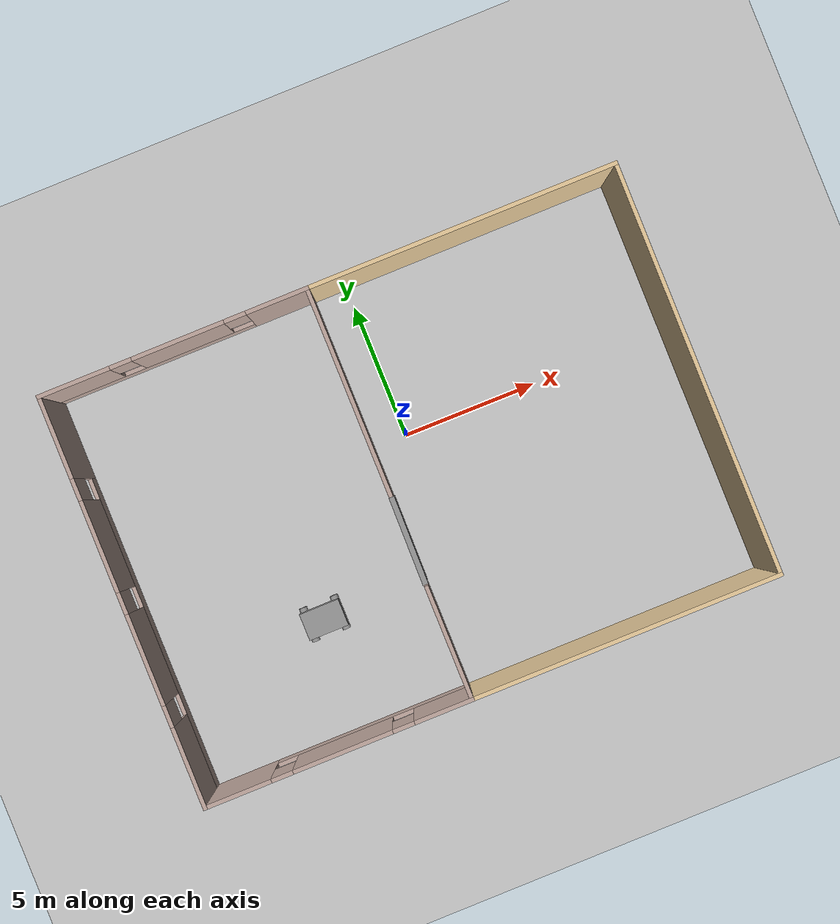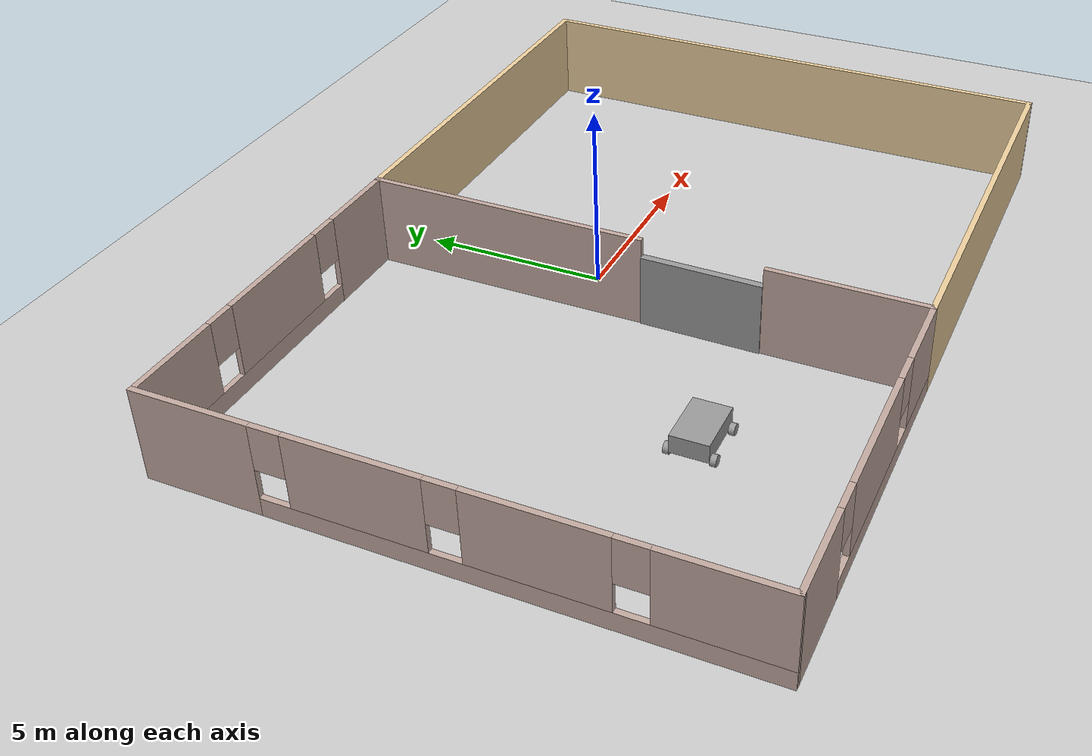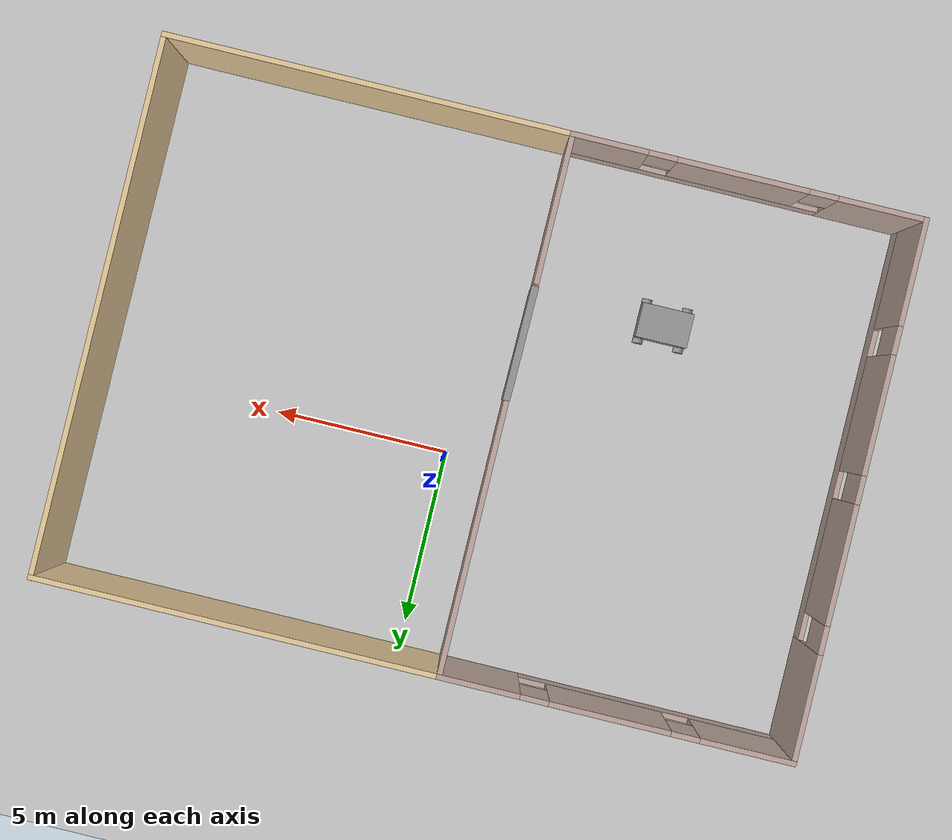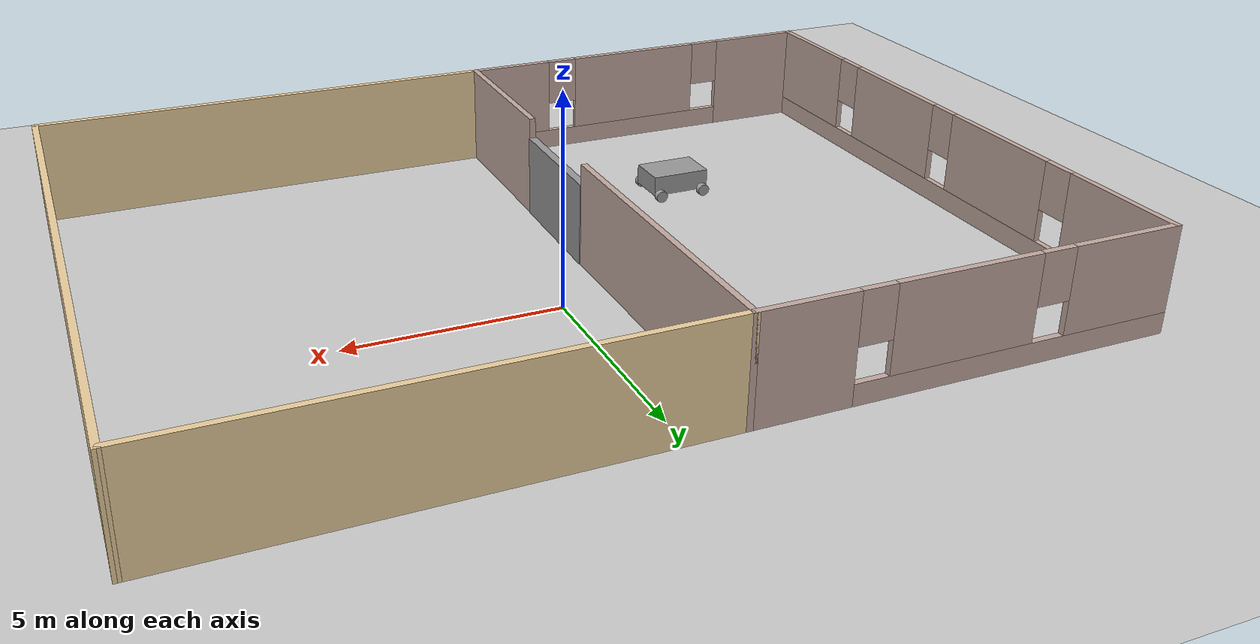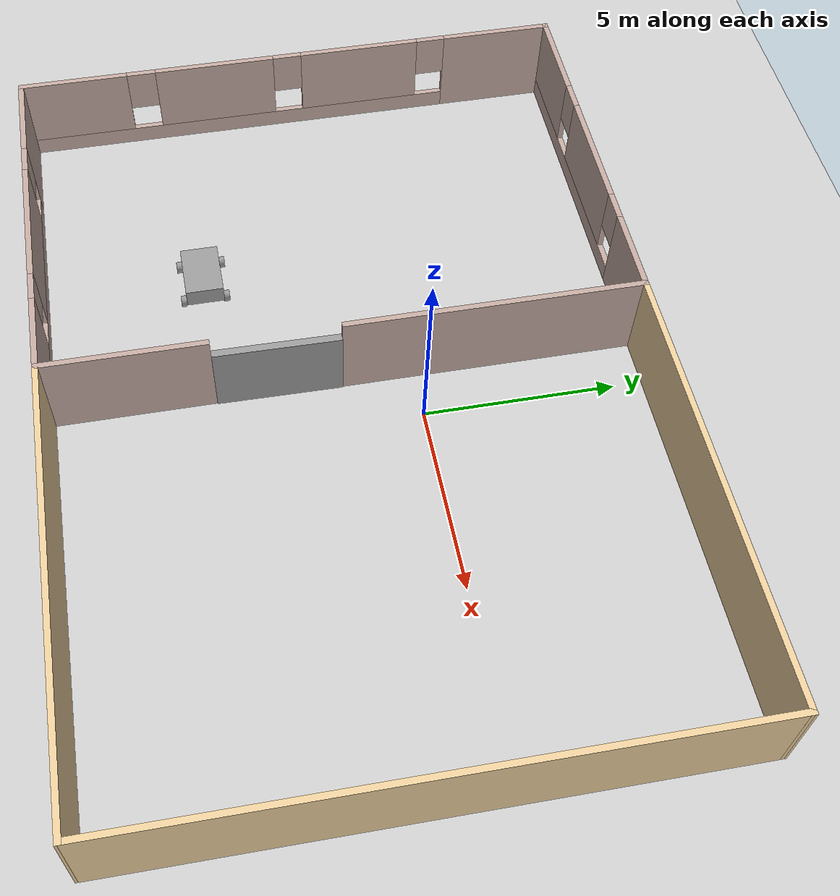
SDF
<sdf version="1.7">
 <world name="default">
  <model name="ground_plane">
   <static>1</static>
   <link name="link_ground_plane">
    <collision name="collision">
     <geometry><plane><normal>0 0 1</normal><size>100 100</size></plane></geometry>
     <surface>
      <contact><collide_bitmask>65535</collide_bitmask></contact>
      <friction><ode><mu>100</mu><mu2>50</mu2></ode></friction>
     </surface>
    </collision>
    <visual name="visual">
     <cast_shadows>0</cast_shadows>
     <geometry><plane><normal>0 0 1</normal><size>100 100</size></plane></geometry>
     <material>
      <script><uri>file://media/materials/scripts/gazebo.material</uri><name>Gazebo/Grey</name></script>
     </material>
    </visual>
   </link>
  </model>
  <model name="mybuilding">
   <pose>-0.545801 -1.74578 0 0 -0 0</pose>
   <link name="Door_4">
    <collision name="Door_4_Collision">
     <geometry><box><size>3.24984 0.2 2</size></box></geometry>
     <pose>0 0 1 0 -0 0</pose>
    </collision>
    <visual name="Door_4_Visual">
     <pose>0 0 1 0 -0 0</pose>
     <geometry><box><size>3.24984 0.2 2</size></box></geometry>
     <material>
      <script><uri>file://media/materials/scripts/gazebo.material</uri><name>Gazebo/Grey</name></script>
     </material>
    </visual>
    <pose>-0.770749 -1.74362 0 0 -0 -1.58189</pose>
   </link>
   <link name="Wall_10">
    <pose>-5.67505 7.54995 0 0 -0 3.14159</pose>
    <visual name="Wall_10_Visual_0">
     <pose>-3.83933 0 1.25 0 -0 0</pose>
     <geometry><box><size>2.32133 0.15 2.5</size></box></geometry>
     <material>
      <script><uri>file://media/materials/scripts/gazebo.material</uri><name>Gazebo/Grey</name></script>
      <ambient>0.760784 0.662745 0.627451 1</ambient>
     </material>
     <meta><layer>0</layer></meta>
    </visual>
    <collision name="Wall_10_Collision_0">
     <geometry><box><size>2.32133 0.15 2.5</size></box></geometry>
     <pose>-3.83933 0 1.25 0 -0 0</pose>
    </collision>
    <visual name="Wall_10_Visual_1">
     <pose>1.16067 0 0.25 0 -0 0</pose>
     <geometry><box><size>7.67867 0.15 0.5</size></box></geometry>
     <material>
      <script><uri>file://media/materials/scripts/gazebo.material</uri><name>Gazebo/Grey</name></script>
      <ambient>0.760784 0.662745 0.627451 1</ambient>
     </material>
     <meta><layer>0</layer></meta>
    </visual>
    <collision name="Wall_10_Collision_1">
     <geometry><box><size>7.67867 0.15 0.5</size></box></geometry>
     <pose>1.16067 0 0.25 0 -0 0</pose>
    </collision>
    <visual name="Wall_10_Visual_2">
     <pose>-0.179835 0 1.5 0 -0 0</pose>
     <geometry><box><size>3.39766 0.15 2</size></box></geometry>
     <material>
      <script><uri>file://media/materials/scripts/gazebo.material</uri><name>Gazebo/Grey</name></script>
      <ambient>0.760784 0.662745 0.627451 1</ambient>
     </material>
     <meta><layer>0</layer></meta>
    </visual>
    <collision name="Wall_10_Collision_2">
     <geometry><box><size>3.39766 0.15 2</size></box></geometry>
     <pose>-0.179835 0 1.5 0 -0 0</pose>
    </collision>
    <visual name="Wall_10_Visual_3">
     <pose>3.6595 0 1.5 0 -0 0</pose>
     <geometry><box><size>2.681 0.15 2</size></box></geometry>
     <material>
      <script><uri>file://media/materials/scripts/gazebo.material</uri><name>Gazebo/Grey</name></script>
      <ambient>0.760784 0.662745 0.627451 1</ambient>
     </material>
     <meta><layer>0</layer></meta>
    </visual>
    <collision name="Wall_10_Collision_3">
     <geometry><box><size>2.681 0.15 2</size></box></geometry>
     <pose>3.6595 0 1.5 0 -0 0</pose>
    </collision>
    <visual name="Wall_10_Visual_4">
     <pose>-2.27867 0 1.9 0 -0 0</pose>
     <geometry><box><size>0.8 0.15 1.2</size></box></geometry>
     <material>
      <script><uri>file://media/materials/scripts/gazebo.material</uri><name>Gazebo/Grey</name></script>
      <ambient>0.760784 0.662745 0.627451 1</ambient>
     </material>
     <meta><layer>0</layer></meta>
    </visual>
    <collision name="Wall_10_Collision_4">
     <geometry><box><size>0.8 0.15 1.2</size></box></geometry>
     <pose>-2.27867 0 1.9 0 -0 0</pose>
    </collision>
    <visual name="Wall_10_Visual_5">
     <pose>1.919 0 1.9 0 -0 0</pose>
     <geometry><box><size>0.8 0.15 1.2</size></box></geometry>
     <material>
      <script><uri>file://media/materials/scripts/gazebo.material</uri><name>Gazebo/Grey</name></script>
      <ambient>0.760784 0.662745 0.627451 1</ambient>
     </material>
     <meta><layer>0</layer></meta>
    </visual>
    <collision name="Wall_10_Collision_5">
     <geometry><box><size>0.8 0.15 1.2</size></box></geometry>
     <pose>1.919 0 1.9 0 -0 0</pose>
    </collision>
   </link>
   <link name="Wall_11">
    <pose>-10.6001 -5.3e-05 0 0 -0 -1.5708</pose>
    <visual name="Wall_11_Visual_0">
     <pose>-6.07843 0 1.25 0 -0 0</pose>
     <geometry><box><size>3.09313 0.15 2.5</size></box></geometry>
     <material>
      <script><uri>file://media/materials/scripts/gazebo.material</uri><name>Gazebo/Grey</name></script>
      <ambient>0.760784 0.662745 0.627451 1</ambient>
     </material>
     <meta><layer>0</layer></meta>
    </visual>
    <collision name="Wall_11_Collision_0">
     <geometry><box><size>3.09313 0.15 2.5</size></box></geometry>
     <pose>-6.07843 0 1.25 0 -0 0</pose>
    </collision>
    <visual name="Wall_11_Visual_1">
     <pose>1.54657 0 0.25 0 -0 0</pose>
     <geometry><box><size>12.1569 0.15 0.5</size></box></geometry>
     <material>
      <script><uri>file://media/materials/scripts/gazebo.material</uri><name>Gazebo/Grey</name></script>
      <ambient>0.760784 0.662745 0.627451 1</ambient>
     </material>
     <meta><layer>0</layer></meta>
    </visual>
    <collision name="Wall_11_Collision_1">
     <geometry><box><size>12.1569 0.15 0.5</size></box></geometry>
     <pose>1.54657 0 0.25 0 -0 0</pose>
    </collision>
    <visual name="Wall_11_Visual_2">
     <pose>-2.04327 0 1.5 0 -0 0</pose>
     <geometry><box><size>3.37719 0.15 2</size></box></geometry>
     <material>
      <script><uri>file://media/materials/scripts/gazebo.material</uri><name>Gazebo/Grey</name></script>
      <ambient>0.760784 0.662745 0.627451 1</ambient>
     </material>
     <meta><layer>0</layer></meta>
    </visual>
    <collision name="Wall_11_Collision_2">
     <geometry><box><size>3.37719 0.15 2</size></box></geometry>
     <pose>-2.04327 0 1.5 0 -0 0</pose>
    </collision>
    <visual name="Wall_11_Visual_3">
     <pose>2.12367 0 1.5 0 -0 0</pose>
     <geometry><box><size>3.35671 0.15 2</size></box></geometry>
     <material>
      <script><uri>file://media/materials/scripts/gazebo.material</uri><name>Gazebo/Grey</name></script>
      <ambient>0.760784 0.662745 0.627451 1</ambient>
     </material>
     <meta><layer>0</layer></meta>
    </visual>
    <collision name="Wall_11_Collision_3">
     <geometry><box><size>3.35671 0.15 2</size></box></geometry>
     <pose>2.12367 0 1.5 0 -0 0</pose>
    </collision>
    <visual name="Wall_11_Visual_4">
     <pose>6.11351 0 1.5 0 -0 0</pose>
     <geometry><box><size>3.02297 0.15 2</size></box></geometry>
     <material>
      <script><uri>file://media/materials/scripts/gazebo.material</uri><name>Gazebo/Grey</name></script>
      <ambient>0.760784 0.662745 0.627451 1</ambient>
     </material>
     <meta><layer>0</layer></meta>
    </visual>
    <collision name="Wall_11_Collision_4">
     <geometry><box><size>3.02297 0.15 2</size></box></geometry>
     <pose>6.11351 0 1.5 0 -0 0</pose>
    </collision>
    <visual name="Wall_11_Visual_5">
     <pose>-4.13187 0 1.9 0 -0 0</pose>
     <geometry><box><size>0.8 0.15 1.2</size></box></geometry>
     <material>
      <script><uri>file://media/materials/scripts/gazebo.material</uri><name>Gazebo/Grey</name></script>
      <ambient>0.760784 0.662745 0.627451 1</ambient>
     </material>
     <meta><layer>0</layer></meta>
    </visual>
    <collision name="Wall_11_Collision_5">
     <geometry><box><size>0.8 0.15 1.2</size></box></geometry>
     <pose>-4.13187 0 1.9 0 -0 0</pose>
    </collision>
    <visual name="Wall_11_Visual_6">
     <pose>0.04532 0 1.9 0 -0 0</pose>
     <geometry><box><size>0.8 0.15 1.2</size></box></geometry>
     <material>
      <script><uri>file://media/materials/scripts/gazebo.material</uri><name>Gazebo/Grey</name></script>
      <ambient>0.760784 0.662745 0.627451 1</ambient>
     </material>
     <meta><layer>0</layer></meta>
    </visual>
    <collision name="Wall_11_Collision_6">
     <geometry><box><size>0.8 0.15 1.2</size></box></geometry>
     <pose>0.04532 0 1.9 0 -0 0</pose>
    </collision>
    <visual name="Wall_11_Visual_7">
     <pose>4.20203 0 1.9 0 -0 0</pose>
     <geometry><box><size>0.8 0.15 1.2</size></box></geometry>
     <material>
      <script><uri>file://media/materials/scripts/gazebo.material</uri><name>Gazebo/Grey</name></script>
      <ambient>0.760784 0.662745 0.627451 1</ambient>
     </material>
     <meta><layer>0</layer></meta>
    </visual>
    <collision name="Wall_11_Collision_7">
     <geometry><box><size>0.8 0.15 1.2</size></box></geometry>
     <pose>4.20203 0 1.9 0 -0 0</pose>
    </collision>
   </link>
   <link name="Wall_13">
    <pose>-5.6911 -7.54664 0 0 -0 0.000695</pose>
    <visual name="Wall_13_Visual_0">
     <pose>-3.72543 0 1.25 0 -0 0</pose>
     <geometry><box><size>2.51706 0.15 2.5</size></box></geometry>
     <material>
      <script><uri>file://media/materials/scripts/gazebo.material</uri><name>Gazebo/Grey</name></script>
      <ambient>0.760784 0.662745 0.627451 1</ambient>
     </material>
     <meta><layer>0</layer></meta>
    </visual>
    <collision name="Wall_13_Collision_0">
     <geometry><box><size>2.51706 0.15 2.5</size></box></geometry>
     <pose>-3.72543 0 1.25 0 -0 0</pose>
    </collision>
    <visual name="Wall_13_Visual_1">
     <pose>1.25853 0 0.25 0 -0 0</pose>
     <geometry><box><size>7.45085 0.15 0.5</size></box></geometry>
     <material>
      <script><uri>file://media/materials/scripts/gazebo.material</uri><name>Gazebo/Grey</name></script>
      <ambient>0.760784 0.662745 0.627451 1</ambient>
     </material>
     <meta><layer>0</layer></meta>
    </visual>
    <collision name="Wall_13_Collision_1">
     <geometry><box><size>7.45085 0.15 0.5</size></box></geometry>
     <pose>1.25853 0 0.25 0 -0 0</pose>
    </collision>
    <visual name="Wall_13_Visual_2">
     <pose>0.1651 0 1.5 0 -0 0</pose>
     <geometry><box><size>3.664 0.15 2</size></box></geometry>
     <material>
      <script><uri>file://media/materials/scripts/gazebo.material</uri><name>Gazebo/Grey</name></script>
      <ambient>0.760784 0.662745 0.627451 1</ambient>
     </material>
     <meta><layer>0</layer></meta>
    </visual>
    <collision name="Wall_13_Collision_2">
     <geometry><box><size>3.664 0.15 2</size></box></geometry>
     <pose>0.1651 0 1.5 0 -0 0</pose>
    </collision>
    <visual name="Wall_13_Visual_3">
     <pose>3.89053 0 1.5 0 -0 0</pose>
     <geometry><box><size>2.18685 0.15 2</size></box></geometry>
     <material>
      <script><uri>file://media/materials/scripts/gazebo.material</uri><name>Gazebo/Grey</name></script>
      <ambient>0.760784 0.662745 0.627451 1</ambient>
     </material>
     <meta><layer>0</layer></meta>
    </visual>
    <collision name="Wall_13_Collision_3">
     <geometry><box><size>2.18685 0.15 2</size></box></geometry>
     <pose>3.89053 0 1.5 0 -0 0</pose>
    </collision>
    <visual name="Wall_13_Visual_4">
     <pose>-2.0669 0 1.9 0 -0 0</pose>
     <geometry><box><size>0.8 0.15 1.2</size></box></geometry>
     <material>
      <script><uri>file://media/materials/scripts/gazebo.material</uri><name>Gazebo/Grey</name></script>
      <ambient>0.760784 0.662745 0.627451 1</ambient>
     </material>
     <meta><layer>0</layer></meta>
    </visual>
    <collision name="Wall_13_Collision_4">
     <geometry><box><size>0.8 0.15 1.2</size></box></geometry>
     <pose>-2.0669 0 1.9 0 -0 0</pose>
    </collision>
    <visual name="Wall_13_Visual_5">
     <pose>2.3971 0 1.9 0 -0 0</pose>
     <geometry><box><size>0.8 0.15 1.2</size></box></geometry>
     <material>
      <script><uri>file://media/materials/scripts/gazebo.material</uri><name>Gazebo/Grey</name></script>
      <ambient>0.760784 0.662745 0.627451 1</ambient>
     </material>
     <meta><layer>0</layer></meta>
    </visual>
    <collision name="Wall_13_Collision_5">
     <geometry><box><size>0.8 0.15 1.2</size></box></geometry>
     <pose>2.3971 0 1.9 0 -0 0</pose>
    </collision>
   </link>
   <link name="Wall_15">
    <collision name="Wall_15_Collision">
     <geometry><box><size>11.5 0.15 2.5</size></box></geometry>
     <pose>0 0 1.25 0 -0 0</pose>
    </collision>
    <visual name="Wall_15_Visual">
     <pose>0 0 1.25 0 -0 0</pose>
     <geometry><box><size>11.5 0.15 2.5</size></box></geometry>
     <material>
      <script><uri>file://media/materials/scripts/gazebo.material</uri><name>Gazebo/Grey</name></script>
      <ambient>0.921569 0.807843 0.615686 1</ambient>
     </material>
     <meta><layer>0</layer></meta>
    </visual>
    <pose>4.89285 -7.54323 0 0 -0 0</pose>
   </link>
   <link name="Wall_18">
    <collision name="Wall_18_Collision">
     <geometry><box><size>11.5 0.15 2.5</size></box></geometry>
     <pose>0 0 1.25 0 -0 0</pose>
    </collision>
    <visual name="Wall_18_Visual">
     <pose>0 0 1.25 0 -0 0</pose>
     <geometry><box><size>11.5 0.15 2.5</size></box></geometry>
     <material>
      <script><uri>file://media/materials/scripts/gazebo.material</uri><name>Gazebo/Grey</name></script>
      <ambient>0.921569 0.807843 0.615686 1</ambient>
     </material>
     <meta><layer>0</layer></meta>
    </visual>
    <pose>4.92495 7.54995 0 0 -0 0</pose>
   </link>
   <link name="Wall_20">
    <collision name="Wall_20_Collision">
     <geometry><box><size>15.2432 0.15 2.5</size></box></geometry>
     <pose>0 0 1.25 0 -0 0</pose>
    </collision>
    <visual name="Wall_20_Visual">
     <pose>0 0 1.25 0 -0 0</pose>
     <geometry><box><size>15.2432 0.15 2.5</size></box></geometry>
     <material>
      <script><uri>file://media/materials/scripts/gazebo.material</uri><name>Gazebo/Grey</name></script>
      <ambient>0.921569 0.807843 0.615686 1</ambient>
     </material>
     <meta><layer>0</layer></meta>
    </visual>
    <pose>10.5839 0.003357 0 0 -0 -1.57292</pose>
   </link>
   <link name="Wall_7">
    <collision name="Wall_7_Collision">
     <geometry><box><size>4.25 0.15 2.5</size></box></geometry>
     <pose>0 0 1.25 0 -0 0</pose>
    </collision>
    <visual name="Wall_7_Visual">
     <pose>0 0 1.25 0 -0 0</pose>
     <geometry><box><size>4.25 0.15 2.5</size></box></geometry>
     <material>
      <script><uri>file://media/materials/scripts/gazebo.material</uri><name>Gazebo/Grey</name></script>
      <ambient>0.760784 0.662745 0.627451 1</ambient>
     </material>
     <meta><layer>0</layer></meta>
    </visual>
    <pose>-0.782147 -5.49323 0 0 -0 1.5708</pose>
   </link>
   <link name="Wall_9">
    <collision name="Wall_9_Collision">
     <geometry><box><size>7.75 0.15 2.5</size></box></geometry>
     <pose>0 0 1.25 0 -0 0</pose>
    </collision>
    <visual name="Wall_9_Visual">
     <pose>0 0 1.25 0 -0 0</pose>
     <geometry><box><size>7.75 0.15 2.5</size></box></geometry>
     <material>
      <script><uri>file://media/materials/scripts/gazebo.material</uri><name>Gazebo/Grey</name></script>
      <ambient>0.760784 0.662745 0.627451 1</ambient>
     </material>
     <meta><layer>0</layer></meta>
    </visual>
    <pose>-0.750053 3.74995 0 0 -0 1.5708</pose>
   </link>
   <static>1</static>
  </model>
  <model name="myrobot_0">
   <link name="link_0">
    <inertial>
     <mass>1</mass>
     <inertia>
      <ixx>0.166667</ixx>
      <ixy>0</ixy>
      <ixz>0</ixz>
      <iyy>0.166667</iyy>
      <iyz>0</iyz>
      <izz>0.166667</izz>
     </inertia>
    </inertial>
    <visual name="visual">
     <geometry><box><size>1.5 1 0.5</size></box></geometry>
     <material>
      <lighting>1</lighting>
      <script><uri>file://media/materials/scripts/gazebo.material</uri><name>Gazebo/Grey</name></script>
      <shader type="pixel"><normal_map>__default__</normal_map></shader>
      <ambient>0.3 0.3 0.3 1</ambient>
      <diffuse>0.7 0.7 0.7 1</diffuse>
      <specular>0.01 0.01 0.01 1</specular>
      <emissive>0 0 0 1</emissive>
     </material>
    </visual>
    <collision name="collision">
     <geometry><box><size>1.5 1 0.5</size></box></geometry>
     <surface>
      <friction>
       <ode><mu>1</mu><mu2>1</mu2><fdir1>0 0 0</fdir1><slip1>0</slip1><slip2>0</slip2></ode>
       <torsional>
        <coefficient>1</coefficient>
        <patch_radius>0</patch_radius>
        <surface_radius>0</surface_radius>
        <use_patch_radius>1</use_patch_radius>
        <ode><slip>0</slip></ode>
       </torsional>
      </friction>
      <bounce><restitution_coefficient>0</restitution_coefficient><threshold>1e+06</threshold></bounce>
      <contact>
       <collide_without_contact>0</collide_without_contact>
       <collide_without_contact_bitmask>1</collide_without_contact_bitmask>
       <collide_bitmask>1</collide_bitmask>
       <ode>
        <soft_cfm>0</soft_cfm>
        <soft_erp>0.2</soft_erp>
        <kp>1e+13</kp>
        <kd>1</kd>
        <max_vel>0.01</max_vel>
        <min_depth>0</min_depth>
       </ode>
       <bullet>
        <split_impulse>1</split_impulse>
        <split_impulse_penetration_threshold>-0.01</split_impulse_penetration_threshold>
        <soft_cfm>0</soft_cfm>
        <soft_erp>0.2</soft_erp>
        <kp>1e+13</kp>
        <kd>1</kd>
       </bullet>
      </contact>
     </surface>
    </collision>
   </link>
   <link name="link_1">
    <inertial>
     <mass>1</mass>
     <inertia><ixx>0.145833</ixx><ixy>0</ixy><ixz>0</ixz><iyy>0.145833</iyy><iyz>0</iyz><izz>0.125</izz></inertia>
    </inertial>
    <pose>0.6 -0.575119 -0.25 1.57 -0 0</pose>
    <visual name="visual">
     <geometry><cylinder><radius>0.15</radius><length>0.15</length></cylinder></geometry>
     <material>
      <lighting>1</lighting>
      <script><uri>file://media/materials/scripts/gazebo.material</uri><name>Gazebo/Grey</name></script>
      <shader type="pixel"><normal_map>__default__</normal_map></shader>
      <ambient>0.3 0.3 0.3 1</ambient>
      <diffuse>0.7 0.7 0.7 1</diffuse>
      <specular>0.01 0.01 0.01 1</specular>
      <emissive>0 0 0 1</emissive>
     </material>
    </visual>
    <collision name="collision">
     <geometry><cylinder><radius>0.15</radius><length>0.15</length></cylinder></geometry>
     <surface>
      <friction>
       <ode><mu>1</mu><mu2>1</mu2><fdir1>0 0 0</fdir1><slip1>0</slip1><slip2>0</slip2></ode>
       <torsional>
        <coefficient>1</coefficient>
        <patch_radius>0</patch_radius>
        <surface_radius>0</surface_radius>
        <use_patch_radius>1</use_patch_radius>
        <ode><slip>0</slip></ode>
       </torsional>
      </friction>
      <bounce><restitution_coefficient>0</restitution_coefficient><threshold>1e+06</threshold></bounce>
      <contact>
       <collide_without_contact>0</collide_without_contact>
       <collide_without_contact_bitmask>1</collide_without_contact_bitmask>
       <collide_bitmask>1</collide_bitmask>
       <ode>
        <soft_cfm>0</soft_cfm>
        <soft_erp>0.2</soft_erp>
        <kp>1e+13</kp>
        <kd>1</kd>
        <max_vel>0.01</max_vel>
        <min_depth>0</min_depth>
       </ode>
       <bullet>
        <split_impulse>1</split_impulse>
        <split_impulse_penetration_threshold>-0.01</split_impulse_penetration_threshold>
        <soft_cfm>0</soft_cfm>
        <soft_erp>0.2</soft_erp>
        <kp>1e+13</kp>
        <kd>1</kd>
       </bullet>
      </contact>
     </surface>
    </collision>
   </link>
   <link name="link_1_clone">
    <inertial>
     <mass>1</mass>
     <inertia><ixx>0.145833</ixx><ixy>0</ixy><ixz>0</ixz><iyy>0.145833</iyy><iyz>0</iyz><izz>0.125</izz></inertia>
    </inertial>
    <pose>-0.6 -0.575119 -0.25 1.57 -0 0</pose>
    <visual name="visual">
     <geometry><cylinder><radius>0.15</radius><length>0.15</length></cylinder></geometry>
     <material>
      <lighting>1</lighting>
      <script><uri>file://media/materials/scripts/gazebo.material</uri><name>Gazebo/Grey</name></script>
      <shader type="pixel"><normal_map>__default__</normal_map></shader>
      <ambient>0.3 0.3 0.3 1</ambient>
      <diffuse>0.7 0.7 0.7 1</diffuse>
      <specular>0.01 0.01 0.01 1</specular>
      <emissive>0 0 0 1</emissive>
     </material>
    </visual>
    <collision name="collision">
     <geometry><cylinder><radius>0.15</radius><length>0.15</length></cylinder></geometry>
     <surface>
      <friction>
       <ode><mu>1</mu><mu2>1</mu2><fdir1>0 0 0</fdir1><slip1>0</slip1><slip2>0</slip2></ode>
       <torsional>
        <coefficient>1</coefficient>
        <patch_radius>0</patch_radius>
        <surface_radius>0</surface_radius>
        <use_patch_radius>1</use_patch_radius>
        <ode><slip>0</slip></ode>
       </torsional>
      </friction>
      <bounce><restitution_coefficient>0</restitution_coefficient><threshold>1e+06</threshold></bounce>
      <contact>
       <collide_without_contact>0</collide_without_contact>
       <collide_without_contact_bitmask>1</collide_without_contact_bitmask>
       <collide_bitmask>1</collide_bitmask>
       <ode>
        <soft_cfm>0</soft_cfm>
        <soft_erp>0.2</soft_erp>
        <kp>1e+13</kp>
        <kd>1</kd>
        <max_vel>0.01</max_vel>
        <min_depth>0</min_depth>
       </ode>
       <bullet>
        <split_impulse>1</split_impulse>
        <split_impulse_penetration_threshold>-0.01</split_impulse_penetration_threshold>
        <soft_cfm>0</soft_cfm>
        <soft_erp>0.2</soft_erp>
        <kp>1e+13</kp>
        <kd>1</kd>
       </bullet>
      </contact>
     </surface>
    </collision>
   </link>
   <link name="link_1_clone_0">
    <inertial>
     <mass>1</mass>
     <inertia><ixx>0.145833</ixx><ixy>0</ixy><ixz>0</ixz><iyy>0.145833</iyy><iyz>0</iyz><izz>0.125</izz></inertia>
    </inertial>
    <pose>-0.6 0.575119 -0.25 1.57 -0 0</pose>
    <visual name="visual">
     <geometry><cylinder><radius>0.15</radius><length>0.15</length></cylinder></geometry>
     <material>
      <lighting>1</lighting>
      <script><uri>file://media/materials/scripts/gazebo.material</uri><name>Gazebo/Grey</name></script>
      <shader type="pixel"><normal_map>__default__</normal_map></shader>
      <ambient>0.3 0.3 0.3 1</ambient>
      <diffuse>0.7 0.7 0.7 1</diffuse>
      <specular>0.01 0.01 0.01 1</specular>
      <emissive>0 0 0 1</emissive>
     </material>
    </visual>
    <collision name="collision">
     <geometry><cylinder><radius>0.15</radius><length>0.15</length></cylinder></geometry>
     <surface>
      <friction>
       <ode><mu>1</mu><mu2>1</mu2><fdir1>0 0 0</fdir1><slip1>0</slip1><slip2>0</slip2></ode>
       <torsional>
        <coefficient>1</coefficient>
        <patch_radius>0</patch_radius>
        <surface_radius>0</surface_radius>
        <use_patch_radius>1</use_patch_radius>
        <ode><slip>0</slip></ode>
       </torsional>
      </friction>
      <bounce><restitution_coefficient>0</restitution_coefficient><threshold>1e+06</threshold></bounce>
      <contact>
       <collide_without_contact>0</collide_without_contact>
       <collide_without_contact_bitmask>1</collide_without_contact_bitmask>
       <collide_bitmask>1</collide_bitmask>
       <ode>
        <soft_cfm>0</soft_cfm>
        <soft_erp>0.2</soft_erp>
        <kp>1e+13</kp>
        <kd>1</kd>
        <max_vel>0.01</max_vel>
        <min_depth>0</min_depth>
       </ode>
       <bullet>
        <split_impulse>1</split_impulse>
        <split_impulse_penetration_threshold>-0.01</split_impulse_penetration_threshold>
        <soft_cfm>0</soft_cfm>
        <soft_erp>0.2</soft_erp>
        <kp>1e+13</kp>
        <kd>1</kd>
       </bullet>
      </contact>
     </surface>
    </collision>
   </link>
   <link name="link_1_clone_1">
    <inertial>
     <mass>1</mass>
     <inertia><ixx>0.145833</ixx><ixy>0</ixy><ixz>0</ixz><iyy>0.145833</iyy><iyz>0</iyz><izz>0.125</izz></inertia>
    </inertial>
    <pose>0.6 0.575119 -0.25 1.57 -0 0</pose>
    <visual name="visual">
     <geometry><cylinder><radius>0.15</radius><length>0.15</length></cylinder></geometry>
     <material>
      <lighting>1</lighting>
      <script><uri>file://media/materials/scripts/gazebo.material</uri><name>Gazebo/Grey</name></script>
      <shader type="pixel"><normal_map>__default__</normal_map></shader>
      <ambient>0.3 0.3 0.3 1</ambient>
      <diffuse>0.7 0.7 0.7 1</diffuse>
      <specular>0.01 0.01 0.01 1</specular>
      <emissive>0 0 0 1</emissive>
     </material>
    </visual>
    <collision name="collision">
     <geometry><cylinder><radius>0.15</radius><length>0.15</length></cylinder></geometry>
     <surface>
      <friction>
       <ode><mu>1</mu><mu2>1</mu2><fdir1>0 0 0</fdir1><slip1>0</slip1><slip2>0</slip2></ode>
       <torsional>
        <coefficient>1</coefficient>
        <patch_radius>0</patch_radius>
        <surface_radius>0</surface_radius>
        <use_patch_radius>1</use_patch_radius>
        <ode><slip>0</slip></ode>
       </torsional>
      </friction>
      <bounce><restitution_coefficient>0</restitution_coefficient><threshold>1e+06</threshold></bounce>
      <contact>
       <collide_without_contact>0</collide_without_contact>
       <collide_without_contact_bitmask>1</collide_without_contact_bitmask>
       <collide_bitmask>1</collide_bitmask>
       <ode>
        <soft_cfm>0</soft_cfm>
        <soft_erp>0.2</soft_erp>
        <kp>1e+13</kp>
        <kd>1</kd>
        <max_vel>0.01</max_vel>
        <min_depth>0</min_depth>
       </ode>
       <bullet>
        <split_impulse>1</split_impulse>
        <split_impulse_penetration_threshold>-0.01</split_impulse_penetration_threshold>
        <soft_cfm>0</soft_cfm>
        <soft_erp>0.2</soft_erp>
        <kp>1e+13</kp>
        <kd>1</kd>
       </bullet>
      </contact>
     </surface>
    </collision>
   </link>
   <joint name="link_0_JOINT_0" type="revolute">
    <parent>link_0</parent>
    <child>link_1_clone</child>
    <axis>
     <xyz>0 0 1</xyz>
     <limit>
      <lower>-1.79769e+308</lower>
      <upper>1.79769e+308</upper>
      <effort>-1</effort>
      <velocity>-1</velocity>
     </limit>
     <dynamics>
      <spring_reference>0</spring_reference>
      <spring_stiffness>0</spring_stiffness>
      <damping>0</damping>
     </dynamics>
    </axis>
    <physics>
     <ode><limit><cfm>0</cfm><erp>0.2</erp></limit><suspension><cfm>0</cfm><erp>0.2</erp></suspension></ode>
    </physics>
   </joint>
   <joint name="link_0_JOINT_1" type="revolute">
    <parent>link_0</parent>
    <child>link_1_clone</child>
    <axis>
     <xyz>1 0 0</xyz>
     <limit>
      <lower>-1.79769e+308</lower>
      <upper>1.79769e+308</upper>
      <effort>-1</effort>
      <velocity>-1</velocity>
     </limit>
     <dynamics>
      <spring_reference>0</spring_reference>
      <spring_stiffness>0</spring_stiffness>
      <damping>0</damping>
     </dynamics>
    </axis>
    <physics>
     <ode><limit><cfm>0</cfm><erp>0.2</erp></limit><suspension><cfm>0</cfm><erp>0.2</erp></suspension></ode>
    </physics>
   </joint>
   <joint name="link_0_JOINT_2" type="revolute">
    <parent>link_0</parent>
    <child>link_1</child>
    <axis>
     <xyz>0 0 1</xyz>
     <limit>
      <lower>-1.79769e+308</lower>
      <upper>1.79769e+308</upper>
      <effort>-1</effort>
      <velocity>-1</velocity>
     </limit>
     <dynamics>
      <spring_reference>0</spring_reference>
      <spring_stiffness>0</spring_stiffness>
      <damping>0</damping>
     </dynamics>
    </axis>
    <physics>
     <ode><limit><cfm>0</cfm><erp>0.2</erp></limit><suspension><cfm>0</cfm><erp>0.2</erp></suspension></ode>
    </physics>
   </joint>
   <joint name="link_0_JOINT_3" type="revolute">
    <parent>link_0</parent>
    <child>link_1_clone_1</child>
    <axis>
     <xyz>0 0 1</xyz>
     <limit>
      <lower>-1.79769e+308</lower>
      <upper>1.79769e+308</upper>
      <effort>-1</effort>
      <velocity>-1</velocity>
     </limit>
     <dynamics>
      <spring_reference>0</spring_reference>
      <spring_stiffness>0</spring_stiffness>
      <damping>0</damping>
     </dynamics>
    </axis>
    <physics>
     <ode><limit><cfm>0</cfm><erp>0.2</erp></limit><suspension><cfm>0</cfm><erp>0.2</erp></suspension></ode>
    </physics>
   </joint>
   <joint name="link_0_JOINT_4" type="revolute">
    <parent>link_0</parent>
    <child>link_1_clone_0</child>
    <axis>
     <xyz>0 0 1</xyz>
     <limit>
      <lower>-1.79769e+308</lower>
      <upper>1.79769e+308</upper>
      <effort>-1</effort>
      <velocity>-1</velocity>
     </limit>
     <dynamics>
      <spring_reference>0</spring_reference>
      <spring_stiffness>0</spring_stiffness>
      <damping>0</damping>
     </dynamics>
    </axis>
    <physics>
     <ode><limit><cfm>0</cfm><erp>0.2</erp></limit><suspension><cfm>0</cfm><erp>0.2</erp></suspension></ode>
    </physics>
   </joint>
   <static>0</static>
   <pose>-5.21861 -5.04134 0.400059 4e-06 -4e-06 0.003283</pose>
  </model>
 </world>
</sdf>
